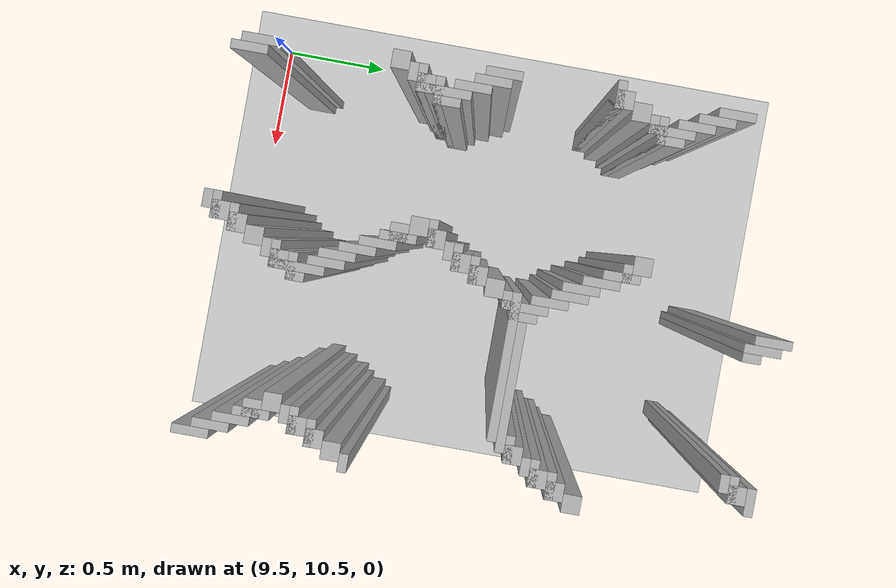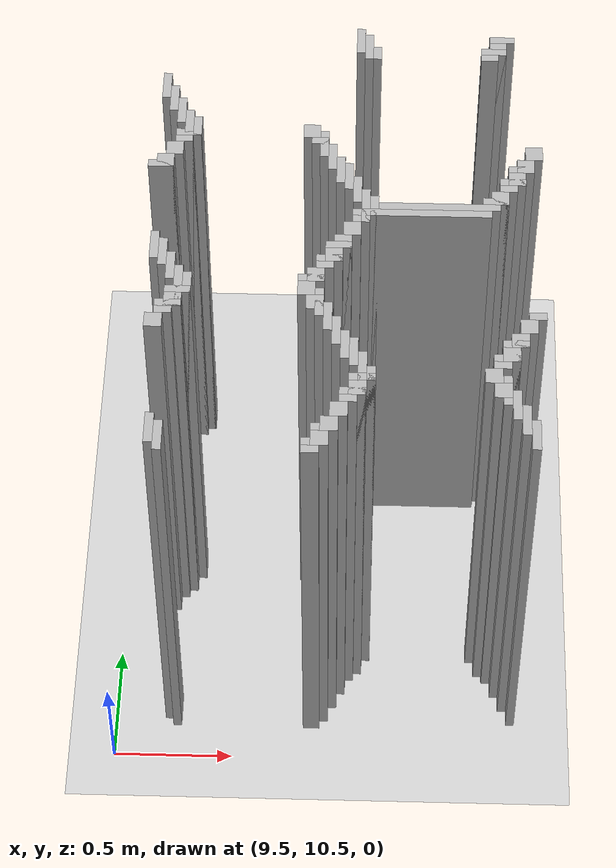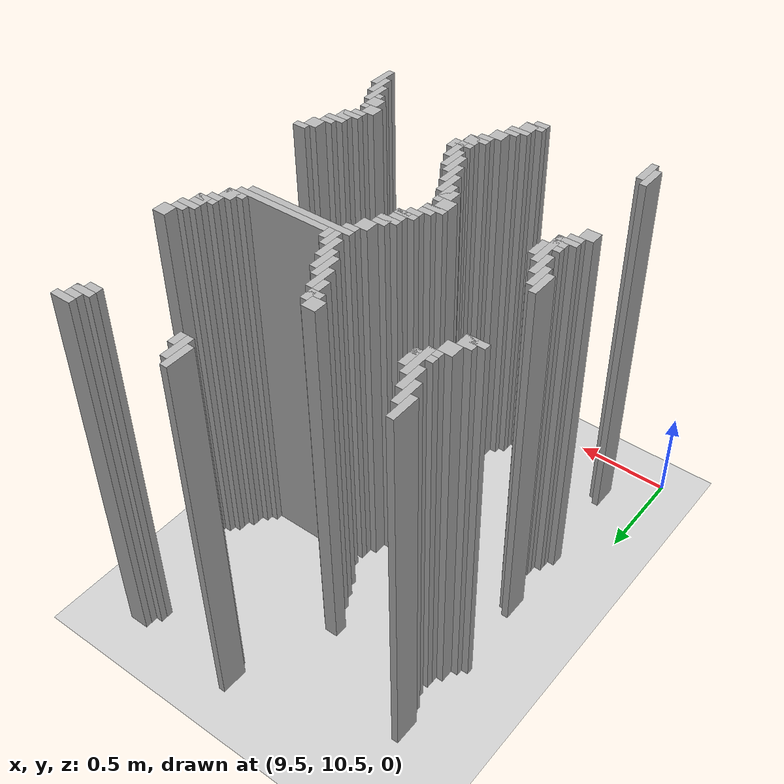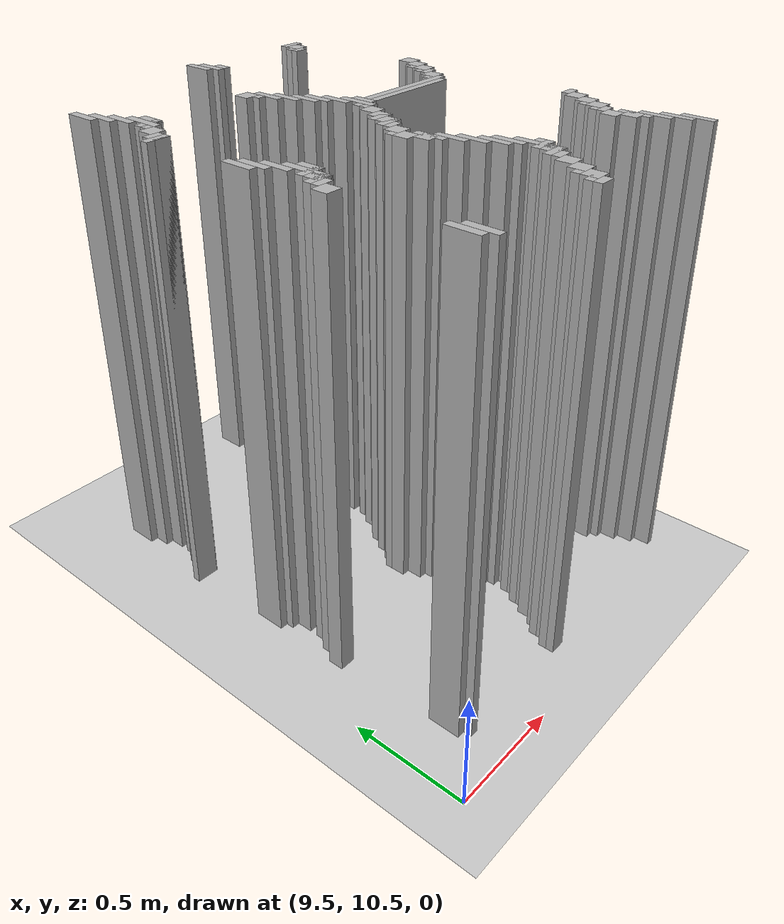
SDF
<sdf version="1.6">
 <world name="slam_world">
  <model name="ground_plane">
   <static>true</static>
   <link name="link">
    <collision name="collision">
     <geometry><plane><normal>0 0 1</normal><size>100 100</size></plane></geometry>
    </collision>
    <visual name="visual">
     <geometry><plane><normal>0 0 1</normal><size>100 100</size></plane></geometry>
     <material>
      <ambient>0.8 0.8 0.8 1</ambient>
      <diffuse>0.8 0.8 0.8 1</diffuse>
      <specular>0.8 0.8 0.8 1</specular>
     </material>
    </visual>
   </link>
  </model>
  <model name="wall_1476">
   <static>true</static>
   <pose>10.493039443155451 12.807424593967516 1.0 0 0 0</pose>
   <link name="link">
    <collision name="collision">
     <geometry><box><size>0.03480278422273782 0.13921113689095127 2.0</size></box></geometry>
    </collision>
    <visual name="visual">
     <geometry><box><size>0.03480278422273782 0.13921113689095127 2.0</size></box></geometry>
     <material><ambient>0.5 0.5 0.5 1</ambient><diffuse>0.7 0.7 0.7 1</diffuse></material>
    </visual>
   </link>
  </model>
  <model name="wall_1491">
   <static>true</static>
   <pose>10.52784222737819 12.772621809744779 1.0 0 0 0</pose>
   <link name="link">
    <collision name="collision">
     <geometry><box><size>0.03480278422273782 0.13921113689095127 2.0</size></box></geometry>
    </collision>
    <visual name="visual">
     <geometry><box><size>0.03480278422273782 0.13921113689095127 2.0</size></box></geometry>
     <material><ambient>0.5 0.5 0.5 1</ambient><diffuse>0.7 0.7 0.7 1</diffuse></material>
    </visual>
   </link>
  </model>
  <model name="wall_1492">
   <static>true</static>
   <pose>11.084686774941995 12.824825986078885 1.0 0 0 0</pose>
   <link name="link">
    <collision name="collision">
     <geometry><box><size>0.10440835266821345 0.03480278422273782 2.0</size></box></geometry>
    </collision>
    <visual name="visual">
     <geometry><box><size>0.10440835266821345 0.03480278422273782 2.0</size></box></geometry>
     <material><ambient>0.5 0.5 0.5 1</ambient><diffuse>0.7 0.7 0.7 1</diffuse></material>
    </visual>
   </link>
  </model>
  <model name="wall_1503">
   <static>true</static>
   <pose>11.067285382830626 12.772621809744779 1.0 0 0 0</pose>
   <link name="link">
    <collision name="collision">
     <geometry><box><size>0.06960556844547564 0.06960556844547564 2.0</size></box></geometry>
    </collision>
    <visual name="visual">
     <geometry><box><size>0.06960556844547564 0.06960556844547564 2.0</size></box></geometry>
     <material><ambient>0.5 0.5 0.5 1</ambient><diffuse>0.7 0.7 0.7 1</diffuse></material>
    </visual>
   </link>
  </model>
  <model name="wall_1514">
   <static>true</static>
   <pose>10.562645011600928 12.737819025522041 1.0 0 0 0</pose>
   <link name="link">
    <collision name="collision">
     <geometry><box><size>0.03480278422273782 0.06960556844547564 2.0</size></box></geometry>
    </collision>
    <visual name="visual">
     <geometry><box><size>0.03480278422273782 0.06960556844547564 2.0</size></box></geometry>
     <material><ambient>0.5 0.5 0.5 1</ambient><diffuse>0.7 0.7 0.7 1</diffuse></material>
    </visual>
   </link>
  </model>
  <model name="wall_1515">
   <static>true</static>
   <pose>11.049883990719257 12.75522041763341 1.0 0 0 0</pose>
   <link name="link">
    <collision name="collision">
     <geometry><box><size>0.10440835266821345 0.03480278422273782 2.0</size></box></geometry>
    </collision>
    <visual name="visual">
     <geometry><box><size>0.10440835266821345 0.03480278422273782 2.0</size></box></geometry>
     <material><ambient>0.5 0.5 0.5 1</ambient><diffuse>0.7 0.7 0.7 1</diffuse></material>
    </visual>
   </link>
  </model>
  <model name="wall_1527">
   <static>true</static>
   <pose>11.032482598607888 12.720417633410673 1.0 0 0 0</pose>
   <link name="link">
    <collision name="collision">
     <geometry><box><size>0.06960556844547564 0.03480278422273782 2.0</size></box></geometry>
    </collision>
    <visual name="visual">
     <geometry><box><size>0.06960556844547564 0.03480278422273782 2.0</size></box></geometry>
     <material><ambient>0.5 0.5 0.5 1</ambient><diffuse>0.7 0.7 0.7 1</diffuse></material>
    </visual>
   </link>
  </model>
  <model name="wall_1576">
   <static>true</static>
   <pose>9.692575406032482 12.529002320185615 1.0 0 0 0</pose>
   <link name="link">
    <collision name="collision">
     <geometry><box><size>0.03480278422273782 0.13921113689095127 2.0</size></box></geometry>
    </collision>
    <visual name="visual">
     <geometry><box><size>0.03480278422273782 0.13921113689095127 2.0</size></box></geometry>
     <material><ambient>0.5 0.5 0.5 1</ambient><diffuse>0.7 0.7 0.7 1</diffuse></material>
    </visual>
   </link>
  </model>
  <model name="wall_1600">
   <static>true</static>
   <pose>9.72737819025522 12.459396751740138 1.0 0 0 0</pose>
   <link name="link">
    <collision name="collision">
     <geometry><box><size>0.03480278422273782 0.13921113689095127 2.0</size></box></geometry>
    </collision>
    <visual name="visual">
     <geometry><box><size>0.03480278422273782 0.13921113689095127 2.0</size></box></geometry>
     <material><ambient>0.5 0.5 0.5 1</ambient><diffuse>0.7 0.7 0.7 1</diffuse></material>
    </visual>
   </link>
  </model>
  <model name="wall_1620">
   <static>true</static>
   <pose>9.762180974477959 12.389791183294664 1.0 0 0 0</pose>
   <link name="link">
    <collision name="collision">
     <geometry><box><size>0.03480278422273782 0.13921113689095127 2.0</size></box></geometry>
    </collision>
    <visual name="visual">
     <geometry><box><size>0.03480278422273782 0.13921113689095127 2.0</size></box></geometry>
     <material><ambient>0.5 0.5 0.5 1</ambient><diffuse>0.7 0.7 0.7 1</diffuse></material>
    </visual>
   </link>
  </model>
  <model name="wall_1633">
   <static>true</static>
   <pose>9.796983758700696 12.302784222737818 1.0 0 0 0</pose>
   <link name="link">
    <collision name="collision">
     <geometry><box><size>0.03480278422273782 0.17401392111368907 2.0</size></box></geometry>
    </collision>
    <visual name="visual">
     <geometry><box><size>0.03480278422273782 0.17401392111368907 2.0</size></box></geometry>
     <material><ambient>0.5 0.5 0.5 1</ambient><diffuse>0.7 0.7 0.7 1</diffuse></material>
    </visual>
   </link>
  </model>
  <model name="wall_1646">
   <static>true</static>
   <pose>9.831786542923433 12.302784222737818 1.0 0 0 0</pose>
   <link name="link">
    <collision name="collision">
     <geometry><box><size>0.03480278422273782 0.10440835266821345 2.0</size></box></geometry>
    </collision>
    <visual name="visual">
     <geometry><box><size>0.03480278422273782 0.10440835266821345 2.0</size></box></geometry>
     <material><ambient>0.5 0.5 0.5 1</ambient><diffuse>0.7 0.7 0.7 1</diffuse></material>
    </visual>
   </link>
  </model>
  <model name="wall_1657">
   <static>true</static>
   <pose>10.301624129930394 12.28538283062645 1.0 0 0 0</pose>
   <link name="link">
    <collision name="collision">
     <geometry><box><size>0.06960556844547564 0.06960556844547564 2.0</size></box></geometry>
    </collision>
    <visual name="visual">
     <geometry><box><size>0.06960556844547564 0.06960556844547564 2.0</size></box></geometry>
     <material><ambient>0.5 0.5 0.5 1</ambient><diffuse>0.7 0.7 0.7 1</diffuse></material>
    </visual>
   </link>
  </model>
  <model name="wall_1673">
   <static>true</static>
   <pose>9.796983758700696 12.267981438515081 1.0 0 0 0</pose>
   <link name="link">
    <collision name="collision">
     <geometry><box><size>0.10440835266821345 0.03480278422273782 2.0</size></box></geometry>
    </collision>
    <visual name="visual">
     <geometry><box><size>0.10440835266821345 0.03480278422273782 2.0</size></box></geometry>
     <material><ambient>0.5 0.5 0.5 1</ambient><diffuse>0.7 0.7 0.7 1</diffuse></material>
    </visual>
   </link>
  </model>
  <model name="wall_1674">
   <static>true</static>
   <pose>10.3538283062645 12.215777262180975 1.0 0 0 0</pose>
   <link name="link">
    <collision name="collision">
     <geometry><box><size>0.03480278422273782 0.13921113689095127 2.0</size></box></geometry>
    </collision>
    <visual name="visual">
     <geometry><box><size>0.03480278422273782 0.13921113689095127 2.0</size></box></geometry>
     <material><ambient>0.5 0.5 0.5 1</ambient><diffuse>0.7 0.7 0.7 1</diffuse></material>
    </visual>
   </link>
  </model>
  <model name="wall_1689">
   <static>true</static>
   <pose>9.779582366589327 12.233178654292344 1.0 0 0 0</pose>
   <link name="link">
    <collision name="collision">
     <geometry><box><size>0.06960556844547564 0.03480278422273782 2.0</size></box></geometry>
    </collision>
    <visual name="visual">
     <geometry><box><size>0.06960556844547564 0.03480278422273782 2.0</size></box></geometry>
     <material><ambient>0.5 0.5 0.5 1</ambient><diffuse>0.7 0.7 0.7 1</diffuse></material>
    </visual>
   </link>
  </model>
  <model name="wall_1690">
   <static>true</static>
   <pose>10.336426914153131 12.233178654292344 1.0 0 0 0</pose>
   <link name="link">
    <collision name="collision">
     <geometry><box><size>0.06960556844547564 0.03480278422273782 2.0</size></box></geometry>
    </collision>
    <visual name="visual">
     <geometry><box><size>0.06960556844547564 0.03480278422273782 2.0</size></box></geometry>
     <material><ambient>0.5 0.5 0.5 1</ambient><diffuse>0.7 0.7 0.7 1</diffuse></material>
    </visual>
   </link>
  </model>
  <model name="wall_1703">
   <static>true</static>
   <pose>9.744779582366588 12.180974477958236 1.0 0 0 0</pose>
   <link name="link">
    <collision name="collision">
     <geometry><box><size>0.06960556844547564 0.06960556844547564 2.0</size></box></geometry>
    </collision>
    <visual name="visual">
     <geometry><box><size>0.06960556844547564 0.06960556844547564 2.0</size></box></geometry>
     <material><ambient>0.5 0.5 0.5 1</ambient><diffuse>0.7 0.7 0.7 1</diffuse></material>
    </visual>
   </link>
  </model>
  <model name="wall_1704">
   <static>true</static>
   <pose>10.38863109048724 12.146171693735498 1.0 0 0 0</pose>
   <link name="link">
    <collision name="collision">
     <geometry><box><size>0.03480278422273782 0.13921113689095127 2.0</size></box></geometry>
    </collision>
    <visual name="visual">
     <geometry><box><size>0.03480278422273782 0.13921113689095127 2.0</size></box></geometry>
     <material><ambient>0.5 0.5 0.5 1</ambient><diffuse>0.7 0.7 0.7 1</diffuse></material>
    </visual>
   </link>
  </model>
  <model name="wall_1705">
   <static>true</static>
   <pose>11.206496519721577 12.180974477958236 1.0 0 0 0</pose>
   <link name="link">
    <collision name="collision">
     <geometry><box><size>0.06960556844547564 0.06960556844547564 2.0</size></box></geometry>
    </collision>
    <visual name="visual">
     <geometry><box><size>0.06960556844547564 0.06960556844547564 2.0</size></box></geometry>
     <material><ambient>0.5 0.5 0.5 1</ambient><diffuse>0.7 0.7 0.7 1</diffuse></material>
    </visual>
   </link>
  </model>
  <model name="wall_1717">
   <static>true</static>
   <pose>9.70997679814385 12.11136890951276 1.0 0 0 0</pose>
   <link name="link">
    <collision name="collision">
     <geometry><box><size>0.06960556844547564 0.06960556844547564 2.0</size></box></geometry>
    </collision>
    <visual name="visual">
     <geometry><box><size>0.06960556844547564 0.06960556844547564 2.0</size></box></geometry>
     <material><ambient>0.5 0.5 0.5 1</ambient><diffuse>0.7 0.7 0.7 1</diffuse></material>
    </visual>
   </link>
  </model>
  <model name="wall_1718">
   <static>true</static>
   <pose>10.423433874709977 12.076566125290023 1.0 0 0 0</pose>
   <link name="link">
    <collision name="collision">
     <geometry><box><size>0.03480278422273782 0.13921113689095127 2.0</size></box></geometry>
    </collision>
    <visual name="visual">
     <geometry><box><size>0.03480278422273782 0.13921113689095127 2.0</size></box></geometry>
     <material><ambient>0.5 0.5 0.5 1</ambient><diffuse>0.7 0.7 0.7 1</diffuse></material>
    </visual>
   </link>
  </model>
  <model name="wall_1719">
   <static>true</static>
   <pose>11.17169373549884 12.11136890951276 1.0 0 0 0</pose>
   <link name="link">
    <collision name="collision">
     <geometry><box><size>0.06960556844547564 0.06960556844547564 2.0</size></box></geometry>
    </collision>
    <visual name="visual">
     <geometry><box><size>0.06960556844547564 0.06960556844547564 2.0</size></box></geometry>
     <material><ambient>0.5 0.5 0.5 1</ambient><diffuse>0.7 0.7 0.7 1</diffuse></material>
    </visual>
   </link>
  </model>
  <model name="wall_1731">
   <static>true</static>
   <pose>9.692575406032482 12.093967517401392 1.0 0 0 0</pose>
   <link name="link">
    <collision name="collision">
     <geometry><box><size>0.10440835266821345 0.03480278422273782 2.0</size></box></geometry>
    </collision>
    <visual name="visual">
     <geometry><box><size>0.10440835266821345 0.03480278422273782 2.0</size></box></geometry>
     <material><ambient>0.5 0.5 0.5 1</ambient><diffuse>0.7 0.7 0.7 1</diffuse></material>
    </visual>
   </link>
  </model>
  <model name="wall_1732">
   <static>true</static>
   <pose>10.458236658932714 12.041763341067284 1.0 0 0 0</pose>
   <link name="link">
    <collision name="collision">
     <geometry><box><size>0.03480278422273782 0.13921113689095127 2.0</size></box></geometry>
    </collision>
    <visual name="visual">
     <geometry><box><size>0.03480278422273782 0.13921113689095127 2.0</size></box></geometry>
     <material><ambient>0.5 0.5 0.5 1</ambient><diffuse>0.7 0.7 0.7 1</diffuse></material>
    </visual>
   </link>
  </model>
  <model name="wall_1733">
   <static>true</static>
   <pose>11.154292343387471 12.093967517401392 1.0 0 0 0</pose>
   <link name="link">
    <collision name="collision">
     <geometry><box><size>0.10440835266821345 0.03480278422273782 2.0</size></box></geometry>
    </collision>
    <visual name="visual">
     <geometry><box><size>0.10440835266821345 0.03480278422273782 2.0</size></box></geometry>
     <material><ambient>0.5 0.5 0.5 1</ambient><diffuse>0.7 0.7 0.7 1</diffuse></material>
    </visual>
   </link>
  </model>
  <model name="wall_1744">
   <static>true</static>
   <pose>11.1368909512761 12.041763341067284 1.0 0 0 0</pose>
   <link name="link">
    <collision name="collision">
     <geometry><box><size>0.06960556844547564 0.06960556844547564 2.0</size></box></geometry>
    </collision>
    <visual name="visual">
     <geometry><box><size>0.06960556844547564 0.06960556844547564 2.0</size></box></geometry>
     <material><ambient>0.5 0.5 0.5 1</ambient><diffuse>0.7 0.7 0.7 1</diffuse></material>
    </visual>
   </link>
  </model>
  <model name="wall_1756">
   <static>true</static>
   <pose>10.493039443155451 11.97215777262181 1.0 0 0 0</pose>
   <link name="link">
    <collision name="collision">
     <geometry><box><size>0.03480278422273782 0.13921113689095127 2.0</size></box></geometry>
    </collision>
    <visual name="visual">
     <geometry><box><size>0.03480278422273782 0.13921113689095127 2.0</size></box></geometry>
     <material><ambient>0.5 0.5 0.5 1</ambient><diffuse>0.7 0.7 0.7 1</diffuse></material>
    </visual>
   </link>
  </model>
  <model name="wall_1757">
   <static>true</static>
   <pose>11.119489559164732 12.024361948955915 1.0 0 0 0</pose>
   <link name="link">
    <collision name="collision">
     <geometry><box><size>0.10440835266821345 0.03480278422273782 2.0</size></box></geometry>
    </collision>
    <visual name="visual">
     <geometry><box><size>0.10440835266821345 0.03480278422273782 2.0</size></box></geometry>
     <material><ambient>0.5 0.5 0.5 1</ambient><diffuse>0.7 0.7 0.7 1</diffuse></material>
    </visual>
   </link>
  </model>
  <model name="wall_1767">
   <static>true</static>
   <pose>11.102088167053363 11.989559164733178 1.0 0 0 0</pose>
   <link name="link">
    <collision name="collision">
     <geometry><box><size>0.06960556844547564 0.03480278422273782 2.0</size></box></geometry>
    </collision>
    <visual name="visual">
     <geometry><box><size>0.06960556844547564 0.03480278422273782 2.0</size></box></geometry>
     <material><ambient>0.5 0.5 0.5 1</ambient><diffuse>0.7 0.7 0.7 1</diffuse></material>
    </visual>
   </link>
  </model>
  <model name="wall_1778">
   <static>true</static>
   <pose>10.52784222737819 11.885150812064964 1.0 0 0 0</pose>
   <link name="link">
    <collision name="collision">
     <geometry><box><size>0.03480278422273782 0.17401392111368907 2.0</size></box></geometry>
    </collision>
    <visual name="visual">
     <geometry><box><size>0.03480278422273782 0.17401392111368907 2.0</size></box></geometry>
     <material><ambient>0.5 0.5 0.5 1</ambient><diffuse>0.7 0.7 0.7 1</diffuse></material>
    </visual>
   </link>
  </model>
  <model name="wall_1779">
   <static>true</static>
   <pose>11.067285382830626 11.937354988399072 1.0 0 0 0</pose>
   <link name="link">
    <collision name="collision">
     <geometry><box><size>0.06960556844547564 0.06960556844547564 2.0</size></box></geometry>
    </collision>
    <visual name="visual">
     <geometry><box><size>0.06960556844547564 0.06960556844547564 2.0</size></box></geometry>
     <material><ambient>0.5 0.5 0.5 1</ambient><diffuse>0.7 0.7 0.7 1</diffuse></material>
    </visual>
   </link>
  </model>
  <model name="wall_1792">
   <static>true</static>
   <pose>10.562645011600928 11.885150812064964 1.0 0 0 0</pose>
   <link name="link">
    <collision name="collision">
     <geometry><box><size>0.03480278422273782 0.10440835266821345 2.0</size></box></geometry>
    </collision>
    <visual name="visual">
     <geometry><box><size>0.03480278422273782 0.10440835266821345 2.0</size></box></geometry>
     <material><ambient>0.5 0.5 0.5 1</ambient><diffuse>0.7 0.7 0.7 1</diffuse></material>
    </visual>
   </link>
  </model>
  <model name="wall_1793">
   <static>true</static>
   <pose>11.049883990719257 11.919953596287703 1.0 0 0 0</pose>
   <link name="link">
    <collision name="collision">
     <geometry><box><size>0.10440835266821345 0.03480278422273782 2.0</size></box></geometry>
    </collision>
    <visual name="visual">
     <geometry><box><size>0.10440835266821345 0.03480278422273782 2.0</size></box></geometry>
     <material><ambient>0.5 0.5 0.5 1</ambient><diffuse>0.7 0.7 0.7 1</diffuse></material>
    </visual>
   </link>
  </model>
  <model name="wall_1805">
   <static>true</static>
   <pose>10.82366589327146 11.885150812064964 1.0 0 0 0</pose>
   <link name="link">
    <collision name="collision">
     <geometry><box><size>0.4872389791183295 0.03480278422273782 2.0</size></box></geometry>
    </collision>
    <visual name="visual">
     <geometry><box><size>0.4872389791183295 0.03480278422273782 2.0</size></box></geometry>
     <material><ambient>0.5 0.5 0.5 1</ambient><diffuse>0.7 0.7 0.7 1</diffuse></material>
    </visual>
   </link>
  </model>
  <model name="wall_1817">
   <static>true</static>
   <pose>10.754060324825986 11.850348027842227 1.0 0 0 0</pose>
   <link name="link">
    <collision name="collision">
     <geometry><box><size>0.5568445475638051 0.03480278422273782 2.0</size></box></geometry>
    </collision>
    <visual name="visual">
     <geometry><box><size>0.5568445475638051 0.03480278422273782 2.0</size></box></geometry>
     <material><ambient>0.5 0.5 0.5 1</ambient><diffuse>0.7 0.7 0.7 1</diffuse></material>
    </visual>
   </link>
  </model>
  <model name="wall_1830">
   <static>true</static>
   <pose>10.51044083526682 11.81554524361949 1.0 0 0 0</pose>
   <link name="link">
    <collision name="collision">
     <geometry><box><size>0.06960556844547564 0.03480278422273782 2.0</size></box></geometry>
    </collision>
    <visual name="visual">
     <geometry><box><size>0.06960556844547564 0.03480278422273782 2.0</size></box></geometry>
     <material><ambient>0.5 0.5 0.5 1</ambient><diffuse>0.7 0.7 0.7 1</diffuse></material>
    </visual>
   </link>
  </model>
  <model name="wall_1844">
   <static>true</static>
   <pose>10.475638051044083 11.763341067285383 1.0 0 0 0</pose>
   <link name="link">
    <collision name="collision">
     <geometry><box><size>0.06960556844547564 0.06960556844547564 2.0</size></box></geometry>
    </collision>
    <visual name="visual">
     <geometry><box><size>0.06960556844547564 0.06960556844547564 2.0</size></box></geometry>
     <material><ambient>0.5 0.5 0.5 1</ambient><diffuse>0.7 0.7 0.7 1</diffuse></material>
    </visual>
   </link>
  </model>
  <model name="wall_1857">
   <static>true</static>
   <pose>9.692575406032482 11.658932714617169 1.0 0 0 0</pose>
   <link name="link">
    <collision name="collision">
     <geometry><box><size>0.03480278422273782 0.13921113689095127 2.0</size></box></geometry>
    </collision>
    <visual name="visual">
     <geometry><box><size>0.03480278422273782 0.13921113689095127 2.0</size></box></geometry>
     <material><ambient>0.5 0.5 0.5 1</ambient><diffuse>0.7 0.7 0.7 1</diffuse></material>
    </visual>
   </link>
  </model>
  <model name="wall_1858">
   <static>true</static>
   <pose>10.440835266821345 11.693735498839906 1.0 0 0 0</pose>
   <link name="link">
    <collision name="collision">
     <geometry><box><size>0.06960556844547564 0.06960556844547564 2.0</size></box></geometry>
    </collision>
    <visual name="visual">
     <geometry><box><size>0.06960556844547564 0.06960556844547564 2.0</size></box></geometry>
     <material><ambient>0.5 0.5 0.5 1</ambient><diffuse>0.7 0.7 0.7 1</diffuse></material>
    </visual>
   </link>
  </model>
  <model name="wall_1871">
   <static>true</static>
   <pose>9.72737819025522 11.624129930394432 1.0 0 0 0</pose>
   <link name="link">
    <collision name="collision">
     <geometry><box><size>0.03480278422273782 0.13921113689095127 2.0</size></box></geometry>
    </collision>
    <visual name="visual">
     <geometry><box><size>0.03480278422273782 0.13921113689095127 2.0</size></box></geometry>
     <material><ambient>0.5 0.5 0.5 1</ambient><diffuse>0.7 0.7 0.7 1</diffuse></material>
    </visual>
   </link>
  </model>
  <model name="wall_1872">
   <static>true</static>
   <pose>10.423433874709977 11.676334106728538 1.0 0 0 0</pose>
   <link name="link">
    <collision name="collision">
     <geometry><box><size>0.10440835266821345 0.03480278422273782 2.0</size></box></geometry>
    </collision>
    <visual name="visual">
     <geometry><box><size>0.10440835266821345 0.03480278422273782 2.0</size></box></geometry>
     <material><ambient>0.5 0.5 0.5 1</ambient><diffuse>0.7 0.7 0.7 1</diffuse></material>
    </visual>
   </link>
  </model>
  <model name="wall_1882">
   <static>true</static>
   <pose>10.406032482598608 11.624129930394432 1.0 0 0 0</pose>
   <link name="link">
    <collision name="collision">
     <geometry><box><size>0.06960556844547564 0.06960556844547564 2.0</size></box></geometry>
    </collision>
    <visual name="visual">
     <geometry><box><size>0.06960556844547564 0.06960556844547564 2.0</size></box></geometry>
     <material><ambient>0.5 0.5 0.5 1</ambient><diffuse>0.7 0.7 0.7 1</diffuse></material>
    </visual>
   </link>
  </model>
  <model name="wall_1894">
   <static>true</static>
   <pose>9.762180974477959 11.554524361948955 1.0 0 0 0</pose>
   <link name="link">
    <collision name="collision">
     <geometry><box><size>0.03480278422273782 0.13921113689095127 2.0</size></box></geometry>
    </collision>
    <visual name="visual">
     <geometry><box><size>0.03480278422273782 0.13921113689095127 2.0</size></box></geometry>
     <material><ambient>0.5 0.5 0.5 1</ambient><diffuse>0.7 0.7 0.7 1</diffuse></material>
    </visual>
   </link>
  </model>
  <model name="wall_1895">
   <static>true</static>
   <pose>10.38863109048724 11.606728538283063 1.0 0 0 0</pose>
   <link name="link">
    <collision name="collision">
     <geometry><box><size>0.10440835266821345 0.03480278422273782 2.0</size></box></geometry>
    </collision>
    <visual name="visual">
     <geometry><box><size>0.10440835266821345 0.03480278422273782 2.0</size></box></geometry>
     <material><ambient>0.5 0.5 0.5 1</ambient><diffuse>0.7 0.7 0.7 1</diffuse></material>
    </visual>
   </link>
  </model>
  <model name="wall_1903">
   <static>true</static>
   <pose>10.37122969837587 11.571925754060324 1.0 0 0 0</pose>
   <link name="link">
    <collision name="collision">
     <geometry><box><size>0.06960556844547564 0.03480278422273782 2.0</size></box></geometry>
    </collision>
    <visual name="visual">
     <geometry><box><size>0.06960556844547564 0.03480278422273782 2.0</size></box></geometry>
     <material><ambient>0.5 0.5 0.5 1</ambient><diffuse>0.7 0.7 0.7 1</diffuse></material>
    </visual>
   </link>
  </model>
  <model name="wall_1914">
   <static>true</static>
   <pose>9.796983758700696 11.450116009280743 1.0 0 0 0</pose>
   <link name="link">
    <collision name="collision">
     <geometry><box><size>0.03480278422273782 0.2088167053364269 2.0</size></box></geometry>
    </collision>
    <visual name="visual">
     <geometry><box><size>0.03480278422273782 0.2088167053364269 2.0</size></box></geometry>
     <material><ambient>0.5 0.5 0.5 1</ambient><diffuse>0.7 0.7 0.7 1</diffuse></material>
    </visual>
   </link>
  </model>
  <model name="wall_1915">
   <static>true</static>
   <pose>10.336426914153131 11.519721577726218 1.0 0 0 0</pose>
   <link name="link">
    <collision name="collision">
     <geometry><box><size>0.06960556844547564 0.06960556844547564 2.0</size></box></geometry>
    </collision>
    <visual name="visual">
     <geometry><box><size>0.06960556844547564 0.06960556844547564 2.0</size></box></geometry>
     <material><ambient>0.5 0.5 0.5 1</ambient><diffuse>0.7 0.7 0.7 1</diffuse></material>
    </visual>
   </link>
  </model>
  <model name="wall_1927">
   <static>true</static>
   <pose>9.831786542923433 11.467517401392112 1.0 0 0 0</pose>
   <link name="link">
    <collision name="collision">
     <geometry><box><size>0.03480278422273782 0.10440835266821345 2.0</size></box></geometry>
    </collision>
    <visual name="visual">
     <geometry><box><size>0.03480278422273782 0.10440835266821345 2.0</size></box></geometry>
     <material><ambient>0.5 0.5 0.5 1</ambient><diffuse>0.7 0.7 0.7 1</diffuse></material>
    </visual>
   </link>
  </model>
  <model name="wall_1928">
   <static>true</static>
   <pose>10.319025522041763 11.502320185614849 1.0 0 0 0</pose>
   <link name="link">
    <collision name="collision">
     <geometry><box><size>0.10440835266821345 0.03480278422273782 2.0</size></box></geometry>
    </collision>
    <visual name="visual">
     <geometry><box><size>0.10440835266821345 0.03480278422273782 2.0</size></box></geometry>
     <material><ambient>0.5 0.5 0.5 1</ambient><diffuse>0.7 0.7 0.7 1</diffuse></material>
    </visual>
   </link>
  </model>
  <model name="wall_1940">
   <static>true</static>
   <pose>10.301624129930394 11.450116009280743 1.0 0 0 0</pose>
   <link name="link">
    <collision name="collision">
     <geometry><box><size>0.06960556844547564 0.06960556844547564 2.0</size></box></geometry>
    </collision>
    <visual name="visual">
     <geometry><box><size>0.06960556844547564 0.06960556844547564 2.0</size></box></geometry>
     <material><ambient>0.5 0.5 0.5 1</ambient><diffuse>0.7 0.7 0.7 1</diffuse></material>
    </visual>
   </link>
  </model>
  <model name="wall_1952">
   <static>true</static>
   <pose>9.796983758700696 11.432714617169372 1.0 0 0 0</pose>
   <link name="link">
    <collision name="collision">
     <geometry><box><size>0.10440835266821345 0.03480278422273782 2.0</size></box></geometry>
    </collision>
    <visual name="visual">
     <geometry><box><size>0.10440835266821345 0.03480278422273782 2.0</size></box></geometry>
     <material><ambient>0.5 0.5 0.5 1</ambient><diffuse>0.7 0.7 0.7 1</diffuse></material>
    </visual>
   </link>
  </model>
  <model name="wall_1953">
   <static>true</static>
   <pose>10.3538283062645 11.380510440835266 1.0 0 0 0</pose>
   <link name="link">
    <collision name="collision">
     <geometry><box><size>0.03480278422273782 0.13921113689095127 2.0</size></box></geometry>
    </collision>
    <visual name="visual">
     <geometry><box><size>0.03480278422273782 0.13921113689095127 2.0</size></box></geometry>
     <material><ambient>0.5 0.5 0.5 1</ambient><diffuse>0.7 0.7 0.7 1</diffuse></material>
    </visual>
   </link>
  </model>
  <model name="wall_1968">
   <static>true</static>
   <pose>9.779582366589327 11.380510440835266 1.0 0 0 0</pose>
   <link name="link">
    <collision name="collision">
     <geometry><box><size>0.06960556844547564 0.06960556844547564 2.0</size></box></geometry>
    </collision>
    <visual name="visual">
     <geometry><box><size>0.06960556844547564 0.06960556844547564 2.0</size></box></geometry>
     <material><ambient>0.5 0.5 0.5 1</ambient><diffuse>0.7 0.7 0.7 1</diffuse></material>
    </visual>
   </link>
  </model>
  <model name="wall_1969">
   <static>true</static>
   <pose>10.336426914153131 11.380510440835266 1.0 0 0 0</pose>
   <link name="link">
    <collision name="collision">
     <geometry><box><size>0.06960556844547564 0.06960556844547564 2.0</size></box></geometry>
    </collision>
    <visual name="visual">
     <geometry><box><size>0.06960556844547564 0.06960556844547564 2.0</size></box></geometry>
     <material><ambient>0.5 0.5 0.5 1</ambient><diffuse>0.7 0.7 0.7 1</diffuse></material>
    </visual>
   </link>
  </model>
  <model name="wall_1985">
   <static>true</static>
   <pose>9.762180974477959 11.363109048723897 1.0 0 0 0</pose>
   <link name="link">
    <collision name="collision">
     <geometry><box><size>0.10440835266821345 0.03480278422273782 2.0</size></box></geometry>
    </collision>
    <visual name="visual">
     <geometry><box><size>0.10440835266821345 0.03480278422273782 2.0</size></box></geometry>
     <material><ambient>0.5 0.5 0.5 1</ambient><diffuse>0.7 0.7 0.7 1</diffuse></material>
    </visual>
   </link>
  </model>
  <model name="wall_1986">
   <static>true</static>
   <pose>10.38863109048724 11.310904872389791 1.0 0 0 0</pose>
   <link name="link">
    <collision name="collision">
     <geometry><box><size>0.03480278422273782 0.13921113689095127 2.0</size></box></geometry>
    </collision>
    <visual name="visual">
     <geometry><box><size>0.03480278422273782 0.13921113689095127 2.0</size></box></geometry>
     <material><ambient>0.5 0.5 0.5 1</ambient><diffuse>0.7 0.7 0.7 1</diffuse></material>
    </visual>
   </link>
  </model>
  <model name="wall_1999">
   <static>true</static>
   <pose>9.744779582366588 11.32830626450116 1.0 0 0 0</pose>
   <link name="link">
    <collision name="collision">
     <geometry><box><size>0.06960556844547564 0.03480278422273782 2.0</size></box></geometry>
    </collision>
    <visual name="visual">
     <geometry><box><size>0.06960556844547564 0.03480278422273782 2.0</size></box></geometry>
     <material><ambient>0.5 0.5 0.5 1</ambient><diffuse>0.7 0.7 0.7 1</diffuse></material>
    </visual>
   </link>
  </model>
  <model name="wall_2000">
   <static>true</static>
   <pose>11.206496519721577 11.32830626450116 1.0 0 0 0</pose>
   <link name="link">
    <collision name="collision">
     <geometry><box><size>0.06960556844547564 0.03480278422273782 2.0</size></box></geometry>
    </collision>
    <visual name="visual">
     <geometry><box><size>0.06960556844547564 0.03480278422273782 2.0</size></box></geometry>
     <material><ambient>0.5 0.5 0.5 1</ambient><diffuse>0.7 0.7 0.7 1</diffuse></material>
    </visual>
   </link>
  </model>
  <model name="wall_2014">
   <static>true</static>
   <pose>9.70997679814385 11.276102088167052 1.0 0 0 0</pose>
   <link name="link">
    <collision name="collision">
     <geometry><box><size>0.06960556844547564 0.06960556844547564 2.0</size></box></geometry>
    </collision>
    <visual name="visual">
     <geometry><box><size>0.06960556844547564 0.06960556844547564 2.0</size></box></geometry>
     <material><ambient>0.5 0.5 0.5 1</ambient><diffuse>0.7 0.7 0.7 1</diffuse></material>
    </visual>
   </link>
  </model>
  <model name="wall_2015">
   <static>true</static>
   <pose>10.423433874709977 11.241299303944315 1.0 0 0 0</pose>
   <link name="link">
    <collision name="collision">
     <geometry><box><size>0.03480278422273782 0.13921113689095127 2.0</size></box></geometry>
    </collision>
    <visual name="visual">
     <geometry><box><size>0.03480278422273782 0.13921113689095127 2.0</size></box></geometry>
     <material><ambient>0.5 0.5 0.5 1</ambient><diffuse>0.7 0.7 0.7 1</diffuse></material>
    </visual>
   </link>
  </model>
  <model name="wall_2016">
   <static>true</static>
   <pose>11.17169373549884 11.276102088167052 1.0 0 0 0</pose>
   <link name="link">
    <collision name="collision">
     <geometry><box><size>0.06960556844547564 0.06960556844547564 2.0</size></box></geometry>
    </collision>
    <visual name="visual">
     <geometry><box><size>0.06960556844547564 0.06960556844547564 2.0</size></box></geometry>
     <material><ambient>0.5 0.5 0.5 1</ambient><diffuse>0.7 0.7 0.7 1</diffuse></material>
    </visual>
   </link>
  </model>
  <model name="wall_2032">
   <static>true</static>
   <pose>10.458236658932714 11.17169373549884 1.0 0 0 0</pose>
   <link name="link">
    <collision name="collision">
     <geometry><box><size>0.03480278422273782 0.13921113689095127 2.0</size></box></geometry>
    </collision>
    <visual name="visual">
     <geometry><box><size>0.03480278422273782 0.13921113689095127 2.0</size></box></geometry>
     <material><ambient>0.5 0.5 0.5 1</ambient><diffuse>0.7 0.7 0.7 1</diffuse></material>
    </visual>
   </link>
  </model>
  <model name="wall_2033">
   <static>true</static>
   <pose>11.1368909512761 11.206496519721577 1.0 0 0 0</pose>
   <link name="link">
    <collision name="collision">
     <geometry><box><size>0.06960556844547564 0.06960556844547564 2.0</size></box></geometry>
    </collision>
    <visual name="visual">
     <geometry><box><size>0.06960556844547564 0.06960556844547564 2.0</size></box></geometry>
     <material><ambient>0.5 0.5 0.5 1</ambient><diffuse>0.7 0.7 0.7 1</diffuse></material>
    </visual>
   </link>
  </model>
  <model name="wall_2049">
   <static>true</static>
   <pose>10.493039443155451 11.1368909512761 1.0 0 0 0</pose>
   <link name="link">
    <collision name="collision">
     <geometry><box><size>0.03480278422273782 0.13921113689095127 2.0</size></box></geometry>
    </collision>
    <visual name="visual">
     <geometry><box><size>0.03480278422273782 0.13921113689095127 2.0</size></box></geometry>
     <material><ambient>0.5 0.5 0.5 1</ambient><diffuse>0.7 0.7 0.7 1</diffuse></material>
    </visual>
   </link>
  </model>
  <model name="wall_2050">
   <static>true</static>
   <pose>11.119489559164732 11.189095127610209 1.0 0 0 0</pose>
   <link name="link">
    <collision name="collision">
     <geometry><box><size>0.10440835266821345 0.03480278422273782 2.0</size></box></geometry>
    </collision>
    <visual name="visual">
     <geometry><box><size>0.10440835266821345 0.03480278422273782 2.0</size></box></geometry>
     <material><ambient>0.5 0.5 0.5 1</ambient><diffuse>0.7 0.7 0.7 1</diffuse></material>
    </visual>
   </link>
  </model>
  <model name="wall_2061">
   <static>true</static>
   <pose>11.102088167053363 11.1368909512761 1.0 0 0 0</pose>
   <link name="link">
    <collision name="collision">
     <geometry><box><size>0.06960556844547564 0.06960556844547564 2.0</size></box></geometry>
    </collision>
    <visual name="visual">
     <geometry><box><size>0.06960556844547564 0.06960556844547564 2.0</size></box></geometry>
     <material><ambient>0.5 0.5 0.5 1</ambient><diffuse>0.7 0.7 0.7 1</diffuse></material>
    </visual>
   </link>
  </model>
  <model name="wall_2075">
   <static>true</static>
   <pose>10.52784222737819 11.032482598607888 1.0 0 0 0</pose>
   <link name="link">
    <collision name="collision">
     <geometry><box><size>0.03480278422273782 0.2088167053364269 2.0</size></box></geometry>
    </collision>
    <visual name="visual">
     <geometry><box><size>0.03480278422273782 0.2088167053364269 2.0</size></box></geometry>
     <material><ambient>0.5 0.5 0.5 1</ambient><diffuse>0.7 0.7 0.7 1</diffuse></material>
    </visual>
   </link>
  </model>
  <model name="wall_2076">
   <static>true</static>
   <pose>11.084686774941995 11.119489559164732 1.0 0 0 0</pose>
   <link name="link">
    <collision name="collision">
     <geometry><box><size>0.10440835266821345 0.03480278422273782 2.0</size></box></geometry>
    </collision>
    <visual name="visual">
     <geometry><box><size>0.10440835266821345 0.03480278422273782 2.0</size></box></geometry>
     <material><ambient>0.5 0.5 0.5 1</ambient><diffuse>0.7 0.7 0.7 1</diffuse></material>
    </visual>
   </link>
  </model>
  <model name="wall_2087">
   <static>true</static>
   <pose>11.067285382830626 11.084686774941995 1.0 0 0 0</pose>
   <link name="link">
    <collision name="collision">
     <geometry><box><size>0.06960556844547564 0.03480278422273782 2.0</size></box></geometry>
    </collision>
    <visual name="visual">
     <geometry><box><size>0.06960556844547564 0.03480278422273782 2.0</size></box></geometry>
     <material><ambient>0.5 0.5 0.5 1</ambient><diffuse>0.7 0.7 0.7 1</diffuse></material>
    </visual>
   </link>
  </model>
  <model name="wall_2098">
   <static>true</static>
   <pose>10.562645011600928 11.032482598607888 1.0 0 0 0</pose>
   <link name="link">
    <collision name="collision">
     <geometry><box><size>0.03480278422273782 0.06960556844547564 2.0</size></box></geometry>
    </collision>
    <visual name="visual">
     <geometry><box><size>0.03480278422273782 0.06960556844547564 2.0</size></box></geometry>
     <material><ambient>0.5 0.5 0.5 1</ambient><diffuse>0.7 0.7 0.7 1</diffuse></material>
    </visual>
   </link>
  </model>
  <model name="wall_2099">
   <static>true</static>
   <pose>11.032482598607888 11.032482598607888 1.0 0 0 0</pose>
   <link name="link">
    <collision name="collision">
     <geometry><box><size>0.06960556844547564 0.06960556844547564 2.0</size></box></geometry>
    </collision>
    <visual name="visual">
     <geometry><box><size>0.06960556844547564 0.06960556844547564 2.0</size></box></geometry>
     <material><ambient>0.5 0.5 0.5 1</ambient><diffuse>0.7 0.7 0.7 1</diffuse></material>
    </visual>
   </link>
  </model>
  <model name="wall_2109">
   <static>true</static>
   <pose>10.52784222737819 11.01508120649652 1.0 0 0 0</pose>
   <link name="link">
    <collision name="collision">
     <geometry><box><size>0.10440835266821345 0.03480278422273782 2.0</size></box></geometry>
    </collision>
    <visual name="visual">
     <geometry><box><size>0.10440835266821345 0.03480278422273782 2.0</size></box></geometry>
     <material><ambient>0.5 0.5 0.5 1</ambient><diffuse>0.7 0.7 0.7 1</diffuse></material>
    </visual>
   </link>
  </model>
  <model name="wall_2110">
   <static>true</static>
   <pose>11.084686774941995 10.962877030162412 1.0 0 0 0</pose>
   <link name="link">
    <collision name="collision">
     <geometry><box><size>0.03480278422273782 0.13921113689095127 2.0</size></box></geometry>
    </collision>
    <visual name="visual">
     <geometry><box><size>0.03480278422273782 0.13921113689095127 2.0</size></box></geometry>
     <material><ambient>0.5 0.5 0.5 1</ambient><diffuse>0.7 0.7 0.7 1</diffuse></material>
    </visual>
   </link>
  </model>
  <model name="wall_2121">
   <static>true</static>
   <pose>10.51044083526682 10.962877030162412 1.0 0 0 0</pose>
   <link name="link">
    <collision name="collision">
     <geometry><box><size>0.06960556844547564 0.06960556844547564 2.0</size></box></geometry>
    </collision>
    <visual name="visual">
     <geometry><box><size>0.06960556844547564 0.06960556844547564 2.0</size></box></geometry>
     <material><ambient>0.5 0.5 0.5 1</ambient><diffuse>0.7 0.7 0.7 1</diffuse></material>
    </visual>
   </link>
  </model>
  <model name="wall_2122">
   <static>true</static>
   <pose>11.067285382830626 10.962877030162412 1.0 0 0 0</pose>
   <link name="link">
    <collision name="collision">
     <geometry><box><size>0.06960556844547564 0.06960556844547564 2.0</size></box></geometry>
    </collision>
    <visual name="visual">
     <geometry><box><size>0.06960556844547564 0.06960556844547564 2.0</size></box></geometry>
     <material><ambient>0.5 0.5 0.5 1</ambient><diffuse>0.7 0.7 0.7 1</diffuse></material>
    </visual>
   </link>
  </model>
  <model name="wall_2134">
   <static>true</static>
   <pose>10.493039443155451 10.945475638051043 1.0 0 0 0</pose>
   <link name="link">
    <collision name="collision">
     <geometry><box><size>0.10440835266821345 0.03480278422273782 2.0</size></box></geometry>
    </collision>
    <visual name="visual">
     <geometry><box><size>0.10440835266821345 0.03480278422273782 2.0</size></box></geometry>
     <material><ambient>0.5 0.5 0.5 1</ambient><diffuse>0.7 0.7 0.7 1</diffuse></material>
    </visual>
   </link>
  </model>
  <model name="wall_2135">
   <static>true</static>
   <pose>11.119489559164732 10.893271461716937 1.0 0 0 0</pose>
   <link name="link">
    <collision name="collision">
     <geometry><box><size>0.03480278422273782 0.13921113689095127 2.0</size></box></geometry>
    </collision>
    <visual name="visual">
     <geometry><box><size>0.03480278422273782 0.13921113689095127 2.0</size></box></geometry>
     <material><ambient>0.5 0.5 0.5 1</ambient><diffuse>0.7 0.7 0.7 1</diffuse></material>
    </visual>
   </link>
  </model>
  <model name="wall_2145">
   <static>true</static>
   <pose>10.475638051044083 10.910672853828306 1.0 0 0 0</pose>
   <link name="link">
    <collision name="collision">
     <geometry><box><size>0.06960556844547564 0.03480278422273782 2.0</size></box></geometry>
    </collision>
    <visual name="visual">
     <geometry><box><size>0.06960556844547564 0.03480278422273782 2.0</size></box></geometry>
     <material><ambient>0.5 0.5 0.5 1</ambient><diffuse>0.7 0.7 0.7 1</diffuse></material>
    </visual>
   </link>
  </model>
  <model name="wall_2157">
   <static>true</static>
   <pose>10.440835266821345 10.8584686774942 1.0 0 0 0</pose>
   <link name="link">
    <collision name="collision">
     <geometry><box><size>0.06960556844547564 0.06960556844547564 2.0</size></box></geometry>
    </collision>
    <visual name="visual">
     <geometry><box><size>0.06960556844547564 0.06960556844547564 2.0</size></box></geometry>
     <material><ambient>0.5 0.5 0.5 1</ambient><diffuse>0.7 0.7 0.7 1</diffuse></material>
    </visual>
   </link>
  </model>
  <model name="wall_2158">
   <static>true</static>
   <pose>11.154292343387471 10.82366589327146 1.0 0 0 0</pose>
   <link name="link">
    <collision name="collision">
     <geometry><box><size>0.03480278422273782 0.13921113689095127 2.0</size></box></geometry>
    </collision>
    <visual name="visual">
     <geometry><box><size>0.03480278422273782 0.13921113689095127 2.0</size></box></geometry>
     <material><ambient>0.5 0.5 0.5 1</ambient><diffuse>0.7 0.7 0.7 1</diffuse></material>
    </visual>
   </link>
  </model>
  <model name="wall_2169">
   <static>true</static>
   <pose>9.72737819025522 10.754060324825986 1.0 0 0 0</pose>
   <link name="link">
    <collision name="collision">
     <geometry><box><size>0.03480278422273782 0.13921113689095127 2.0</size></box></geometry>
    </collision>
    <visual name="visual">
     <geometry><box><size>0.03480278422273782 0.13921113689095127 2.0</size></box></geometry>
     <material><ambient>0.5 0.5 0.5 1</ambient><diffuse>0.7 0.7 0.7 1</diffuse></material>
    </visual>
   </link>
  </model>
  <model name="wall_2170">
   <static>true</static>
   <pose>10.406032482598608 10.788863109048723 1.0 0 0 0</pose>
   <link name="link">
    <collision name="collision">
     <geometry><box><size>0.06960556844547564 0.06960556844547564 2.0</size></box></geometry>
    </collision>
    <visual name="visual">
     <geometry><box><size>0.06960556844547564 0.06960556844547564 2.0</size></box></geometry>
     <material><ambient>0.5 0.5 0.5 1</ambient><diffuse>0.7 0.7 0.7 1</diffuse></material>
    </visual>
   </link>
  </model>
  <model name="wall_2171">
   <static>true</static>
   <pose>11.189095127610209 10.754060324825986 1.0 0 0 0</pose>
   <link name="link">
    <collision name="collision">
     <geometry><box><size>0.03480278422273782 0.13921113689095127 2.0</size></box></geometry>
    </collision>
    <visual name="visual">
     <geometry><box><size>0.03480278422273782 0.13921113689095127 2.0</size></box></geometry>
     <material><ambient>0.5 0.5 0.5 1</ambient><diffuse>0.7 0.7 0.7 1</diffuse></material>
    </visual>
   </link>
  </model>
  <model name="wall_2182">
   <static>true</static>
   <pose>9.762180974477959 10.719257540603248 1.0 0 0 0</pose>
   <link name="link">
    <collision name="collision">
     <geometry><box><size>0.03480278422273782 0.13921113689095127 2.0</size></box></geometry>
    </collision>
    <visual name="visual">
     <geometry><box><size>0.03480278422273782 0.13921113689095127 2.0</size></box></geometry>
     <material><ambient>0.5 0.5 0.5 1</ambient><diffuse>0.7 0.7 0.7 1</diffuse></material>
    </visual>
   </link>
  </model>
  <model name="wall_2183">
   <static>true</static>
   <pose>10.38863109048724 10.771461716937354 1.0 0 0 0</pose>
   <link name="link">
    <collision name="collision">
     <geometry><box><size>0.10440835266821345 0.03480278422273782 2.0</size></box></geometry>
    </collision>
    <visual name="visual">
     <geometry><box><size>0.10440835266821345 0.03480278422273782 2.0</size></box></geometry>
     <material><ambient>0.5 0.5 0.5 1</ambient><diffuse>0.7 0.7 0.7 1</diffuse></material>
    </visual>
   </link>
  </model>
  <model name="wall_2192">
   <static>true</static>
   <pose>10.37122969837587 10.719257540603248 1.0 0 0 0</pose>
   <link name="link">
    <collision name="collision">
     <geometry><box><size>0.06960556844547564 0.06960556844547564 2.0</size></box></geometry>
    </collision>
    <visual name="visual">
     <geometry><box><size>0.06960556844547564 0.06960556844547564 2.0</size></box></geometry>
     <material><ambient>0.5 0.5 0.5 1</ambient><diffuse>0.7 0.7 0.7 1</diffuse></material>
    </visual>
   </link>
  </model>
  <model name="wall_2203">
   <static>true</static>
   <pose>10.3538283062645 10.70185614849188 1.0 0 0 0</pose>
   <link name="link">
    <collision name="collision">
     <geometry><box><size>0.10440835266821345 0.03480278422273782 2.0</size></box></geometry>
    </collision>
    <visual name="visual">
     <geometry><box><size>0.10440835266821345 0.03480278422273782 2.0</size></box></geometry>
     <material><ambient>0.5 0.5 0.5 1</ambient><diffuse>0.7 0.7 0.7 1</diffuse></material>
    </visual>
   </link>
  </model>
  <model name="wall_2212">
   <static>true</static>
   <pose>10.336426914153131 10.66705336426914 1.0 0 0 0</pose>
   <link name="link">
    <collision name="collision">
     <geometry><box><size>0.06960556844547564 0.03480278422273782 2.0</size></box></geometry>
    </collision>
    <visual name="visual">
     <geometry><box><size>0.06960556844547564 0.03480278422273782 2.0</size></box></geometry>
     <material><ambient>0.5 0.5 0.5 1</ambient><diffuse>0.7 0.7 0.7 1</diffuse></material>
    </visual>
   </link>
  </model>
 </world>
</sdf>
